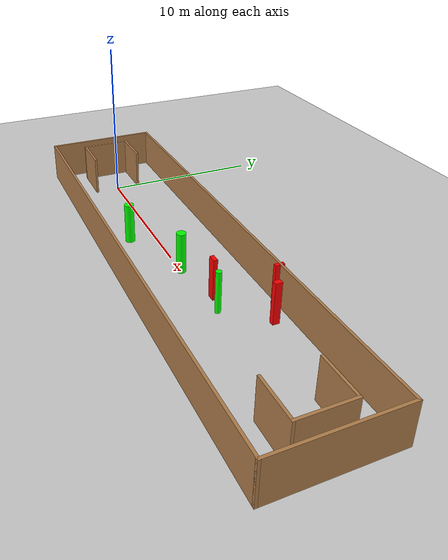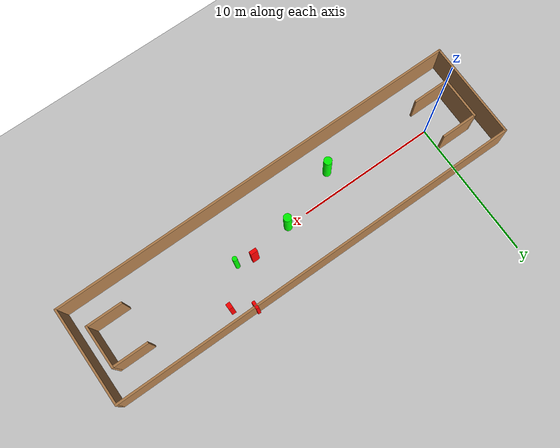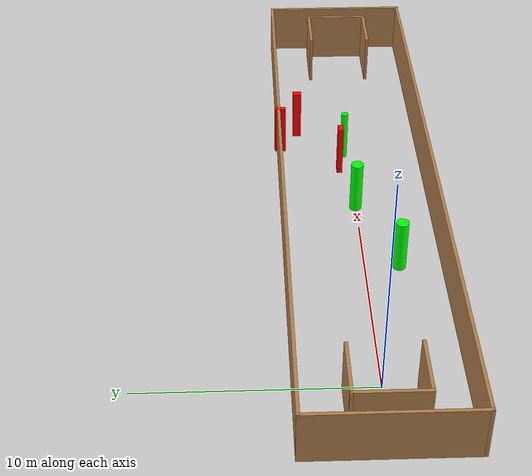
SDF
<sdf version="1.7">
 <world name="default">
  <light name="sun" type="directional">
   <pose>0 0 10 0 -0 0</pose>
   <diffuse>0.8 0.8 0.8 1</diffuse>
   <specular>0.2 0.2 0.2 1</specular>
   <attenuation>
    <range>1000</range>
    <constant>0.9</constant>
    <linear>0.01</linear>
    <quadratic>0.001</quadratic>
   </attenuation>
   <direction>-0.5 0.1 -0.9</direction>
   <spot><inner_angle>0</inner_angle><outer_angle>0</outer_angle><falloff>0</falloff></spot>
  </light>
  <model name="ground_plane">
   <static>1</static>
   <link name="link">
    <collision name="collision">
     <geometry><plane><normal>0 0 1</normal><size>100 100</size></plane></geometry>
     <surface>
      <contact><collide_bitmask>65535</collide_bitmask></contact>
      <friction><ode><mu>100</mu><mu2>50</mu2></ode></friction>
     </surface>
    </collision>
    <visual name="visual">
     <cast_shadows>0</cast_shadows>
     <geometry><plane><normal>0 0 1</normal><size>100 100</size></plane></geometry>
     <material>
      <script><uri>file://media/materials/scripts/gazebo.material</uri><name>Gazebo/Grey</name></script>
     </material>
    </visual>
   </link>
  </model>
  <gravity>0 0 -9.8</gravity>
  <magnetic_field>6e-06 2.3e-05 -4.2e-05</magnetic_field>
  <atmosphere type="adiabatic"/>
  <physics type="ode">
   <max_step_size>0.001</max_step_size>
   <real_time_factor>1</real_time_factor>
   <real_time_update_rate>1000</real_time_update_rate>
  </physics>
  <scene><ambient>0.4 0.4 0.4 1</ambient><background>0.7 0.7 0.7 1</background><shadows>1</shadows></scene>
  <spherical_coordinates>
   <surface_model>EARTH_WGS84</surface_model>
   <latitude_deg>0</latitude_deg>
   <longitude_deg>0</longitude_deg>
   <elevation>0</elevation>
   <heading_deg>0</heading_deg>
  </spherical_coordinates>
  <model name="my_base_walls">
   <link name="Wall_0">
    <collision name="Wall_0_Collision">
     <geometry><box><size>7.15 0.15 2.5</size></box></geometry>
     <pose>0 0 1.25 0 -0 0</pose>
    </collision>
    <visual name="Wall_0_Visual">
     <pose>0 0 1.25 0 -0 0</pose>
     <geometry><box><size>7.15 0.15 2.5</size></box></geometry>
     <material>
      <script><uri>file://media/materials/scripts/gazebo.material</uri><name>Gazebo/Wood</name></script>
      <ambient>1 1 1 1</ambient>
     </material>
     <meta><layer>0</layer></meta>
    </visual>
    <pose>-15 0 0 0 -0 1.5708</pose>
   </link>
   <link name="Wall_10">
    <collision name="Wall_10_Collision">
     <geometry><box><size>2.65 0.15 2.5</size></box></geometry>
     <pose>0 0 1.25 0 -0 0</pose>
    </collision>
    <visual name="Wall_10_Visual">
     <pose>0 0 1.25 0 -0 0</pose>
     <geometry><box><size>2.65 0.15 2.5</size></box></geometry>
     <material>
      <script><uri>file://media/materials/scripts/gazebo.material</uri><name>Gazebo/Wood</name></script>
      <ambient>1 1 1 1</ambient>
     </material>
     <meta><layer>0</layer></meta>
    </visual>
    <pose>-12.75 -1.5 0 0 -0 0</pose>
   </link>
   <link name="Wall_12">
    <collision name="Wall_12_Collision">
     <geometry><box><size>2.65 0.15 2.5</size></box></geometry>
     <pose>0 0 1.25 0 -0 0</pose>
    </collision>
    <visual name="Wall_12_Visual">
     <pose>0 0 1.25 0 -0 0</pose>
     <geometry><box><size>2.65 0.15 2.5</size></box></geometry>
     <material>
      <script><uri>file://media/materials/scripts/gazebo.material</uri><name>Gazebo/Wood</name></script>
      <ambient>1 1 1 1</ambient>
     </material>
     <meta><layer>0</layer></meta>
    </visual>
    <pose>-12.75 1.5 0 0 -0 0</pose>
   </link>
   <link name="Wall_14">
    <collision name="Wall_14_Collision">
     <geometry><box><size>3.15 0.15 2.5</size></box></geometry>
     <pose>0 0 1.25 0 -0 0</pose>
    </collision>
    <visual name="Wall_14_Visual">
     <pose>0 0 1.25 0 -0 0</pose>
     <geometry><box><size>3.15 0.15 2.5</size></box></geometry>
     <material>
      <script><uri>file://media/materials/scripts/gazebo.material</uri><name>Gazebo/Wood</name></script>
      <ambient>1 1 1 1</ambient>
     </material>
     <meta><layer>0</layer></meta>
    </visual>
    <pose>14 0 0 0 -0 -1.5708</pose>
   </link>
   <link name="Wall_15">
    <collision name="Wall_15_Collision">
     <geometry><box><size>2.65 0.15 2.5</size></box></geometry>
     <pose>0 0 1.25 0 -0 0</pose>
    </collision>
    <visual name="Wall_15_Visual">
     <pose>0 0 1.25 0 -0 0</pose>
     <geometry><box><size>2.65 0.15 2.5</size></box></geometry>
     <material>
      <script><uri>file://media/materials/scripts/gazebo.material</uri><name>Gazebo/Wood</name></script>
      <ambient>1 1 1 1</ambient>
     </material>
     <meta><layer>0</layer></meta>
    </visual>
    <pose>12.75 -1.5 0 0 -0 3.14159</pose>
   </link>
   <link name="Wall_17">
    <collision name="Wall_17_Collision">
     <geometry><box><size>2.65 0.15 2.5</size></box></geometry>
     <pose>0 0 1.25 0 -0 0</pose>
    </collision>
    <visual name="Wall_17_Visual">
     <pose>0 0 1.25 0 -0 0</pose>
     <geometry><box><size>2.65 0.15 2.5</size></box></geometry>
     <material>
      <script><uri>file://media/materials/scripts/gazebo.material</uri><name>Gazebo/Wood</name></script>
      <ambient>1 1 1 1</ambient>
     </material>
     <meta><layer>0</layer></meta>
    </visual>
    <pose>12.75 1.5 0 0 -0 3.14159</pose>
   </link>
   <link name="Wall_2">
    <collision name="Wall_2_Collision">
     <geometry><box><size>30.15 0.15 2.5</size></box></geometry>
     <pose>0 0 1.25 0 -0 0</pose>
    </collision>
    <visual name="Wall_2_Visual">
     <pose>0 0 1.25 0 -0 0</pose>
     <geometry><box><size>30.15 0.15 2.5</size></box></geometry>
     <material>
      <script><uri>file://media/materials/scripts/gazebo.material</uri><name>Gazebo/Wood</name></script>
      <ambient>1 1 1 1</ambient>
     </material>
     <meta><layer>0</layer></meta>
    </visual>
    <pose>-0 -3.5 0 0 -0 0</pose>
   </link>
   <link name="Wall_4">
    <collision name="Wall_4_Collision">
     <geometry><box><size>30.15 0.15 2.5</size></box></geometry>
     <pose>0 0 1.25 0 -0 0</pose>
    </collision>
    <visual name="Wall_4_Visual">
     <pose>0 0 1.25 0 -0 0</pose>
     <geometry><box><size>30.15 0.15 2.5</size></box></geometry>
     <material>
      <script><uri>file://media/materials/scripts/gazebo.material</uri><name>Gazebo/Wood</name></script>
      <ambient>1 1 1 1</ambient>
     </material>
     <meta><layer>0</layer></meta>
    </visual>
    <pose>-0 3.5 0 0 -0 0</pose>
   </link>
   <link name="Wall_6">
    <collision name="Wall_6_Collision">
     <geometry><box><size>7.15 0.15 2.5</size></box></geometry>
     <pose>0 0 1.25 0 -0 0</pose>
    </collision>
    <visual name="Wall_6_Visual">
     <pose>0 0 1.25 0 -0 0</pose>
     <geometry><box><size>7.15 0.15 2.5</size></box></geometry>
     <material>
      <script><uri>file://media/materials/scripts/gazebo.material</uri><name>Gazebo/Wood</name></script>
      <ambient>1 1 1 1</ambient>
     </material>
     <meta><layer>0</layer></meta>
    </visual>
    <pose>15 0 0 0 -0 -1.5708</pose>
   </link>
   <link name="Wall_9">
    <collision name="Wall_9_Collision">
     <geometry><box><size>3.15 0.15 2.5</size></box></geometry>
     <pose>0 0 1.25 0 -0 0</pose>
    </collision>
    <visual name="Wall_9_Visual">
     <pose>0 0 1.25 0 -0 0</pose>
     <geometry><box><size>3.15 0.15 2.5</size></box></geometry>
     <material>
      <script><uri>file://media/materials/scripts/gazebo.material</uri><name>Gazebo/Wood</name></script>
      <ambient>1 1 1 1</ambient>
     </material>
     <meta><layer>0</layer></meta>
    </visual>
    <pose>-14 0 0 0 -0 -1.5708</pose>
   </link>
   <static>1</static>
   <pose>11.5 0 0 0 -0 0</pose>
  </model>
  <model name="cylinder1">
   <static>1</static>
   <link name="link">
    <inertial>
     <mass>1</mass>
     <inertia><ixx>0.5</ixx><ixy>0</ixy><ixz>0</ixz><iyy>0.5</iyy><iyz>0</iyz><izz>1</izz></inertia>
    </inertial>
    <collision name="collision">
     <geometry><cylinder><radius>0.2845453761114074</radius><length>2.5</length></cylinder></geometry>
    </collision>
    <visual name="visual">
     <geometry><cylinder><radius>0.2845453761114074</radius><length>2.5</length></cylinder></geometry>
     <material>
      <ambient>0 1 0 1</ambient>
      <diffuse>0 1 0 1</diffuse>
      <specular>0.1 0.1 0.1 1</specular>
      <emissive>0 0 0 0</emissive>
     </material>
    </visual>
   </link>
   <pose>11.500040994280681 0.032694710108958525 1.25 0 0 0</pose>
  </model>
  <model name="cylinder2">
   <static>1</static>
   <link name="link">
    <inertial>
     <mass>1</mass>
     <inertia><ixx>0.5</ixx><ixy>0</ixy><ixz>0</ixz><iyy>0.5</iyy><iyz>0</iyz><izz>1</izz></inertia>
    </inertial>
    <collision name="collision">
     <geometry><cylinder><radius>0.2896067926861683</radius><length>2.5</length></cylinder></geometry>
    </collision>
    <visual name="visual">
     <geometry><cylinder><radius>0.2896067926861683</radius><length>2.5</length></cylinder></geometry>
     <material>
      <ambient>0 1 0 1</ambient>
      <diffuse>0 1 0 1</diffuse>
      <specular>0.1 0.1 0.1 1</specular>
      <emissive>0 0 0 0</emissive>
     </material>
    </visual>
   </link>
   <pose>7.18333648410562 -1.53818536156701 1.25 0 0 0</pose>
  </model>
  <model name="cylinder3">
   <static>1</static>
   <link name="link">
    <inertial>
     <mass>1</mass>
     <inertia><ixx>0.5</ixx><ixy>0</ixy><ixz>0</ixz><iyy>0.5</iyy><iyz>0</iyz><izz>1</izz></inertia>
    </inertial>
    <collision name="collision">
     <geometry><cylinder><radius>0.16704961136294827</radius><length>2.5</length></cylinder></geometry>
    </collision>
    <visual name="visual">
     <geometry><cylinder><radius>0.16704961136294827</radius><length>2.5</length></cylinder></geometry>
     <material>
      <ambient>0 1 0 1</ambient>
      <diffuse>0 1 0 1</diffuse>
      <specular>0.1 0.1 0.1 1</specular>
      <emissive>0 0 0 0</emissive>
     </material>
    </visual>
   </link>
   <pose>15.725848429523788 0.27755921179613985 1.25 0 0 0</pose>
  </model>
  <model name="box1">
   <static>1</static>
   <link name="link">
    <inertial>
     <mass>1</mass>
     <inertia><ixx>0.083</ixx><ixy>0</ixy><ixz>0</ixz><iyy>0.083</iyy><iyz>0</iyz><izz>0.083</izz></inertia>
    </inertial>
    <collision name="collision">
     <geometry><box><size>0.5057493724035871 0.24874041204176334 2.5</size></box></geometry>
    </collision>
    <visual name="visual">
     <geometry><box><size>0.5057493724035871 0.24874041204176334 2.5</size></box></geometry>
     <material>
      <ambient>1 0 0 1</ambient>
      <diffuse>1 0 0 1</diffuse>
      <specular>0.1 0.1 0.1 1</specular>
      <emissive>0 0 0 0</emissive>
     </material>
    </visual>
    <sensor name="my_contact" type="contact">
     <contact><collision>box_collision</collision><topic>__default_topic__</topic></contact>
    </sensor>
   </link>
   <pose>14.511005706650275 0.5724812324237458 1.25 0 0 0</pose>
  </model>
  <model name="box2">
   <static>1</static>
   <link name="link">
    <inertial>
     <mass>1</mass>
     <inertia><ixx>0.083</ixx><ixy>0</ixy><ixz>0</ixz><iyy>0.083</iyy><iyz>0</iyz><izz>0.083</izz></inertia>
    </inertial>
    <collision name="collision">
     <geometry><box><size>0.30595941887847733 0.4054618724916485 2.5</size></box></geometry>
    </collision>
    <visual name="visual">
     <geometry><box><size>0.30595941887847733 0.4054618724916485 2.5</size></box></geometry>
     <material>
      <ambient>1 0 0 1</ambient>
      <diffuse>1 0 0 1</diffuse>
      <specular>0.1 0.1 0.1 1</specular>
      <emissive>0 0 0 0</emissive>
     </material>
    </visual>
    <sensor name="my_contact" type="contact">
     <contact><collision>box_collision</collision><topic>__default_topic__</topic></contact>
    </sensor>
   </link>
   <pose>17.65823708798235 2.5295320857613532 1.25 0 0 0</pose>
  </model>
  <model name="box3">
   <static>1</static>
   <link name="link">
    <inertial>
     <mass>1</mass>
     <inertia><ixx>0.083</ixx><ixy>0</ixy><ixz>0</ixz><iyy>0.083</iyy><iyz>0</iyz><izz>0.083</izz></inertia>
    </inertial>
    <collision name="collision">
     <geometry><box><size>0.2135417585346504 0.538514554715756 2.5</size></box></geometry>
    </collision>
    <visual name="visual">
     <geometry><box><size>0.2135417585346504 0.538514554715756 2.5</size></box></geometry>
     <material>
      <ambient>1 0 0 1</ambient>
      <diffuse>1 0 0 1</diffuse>
      <specular>0.1 0.1 0.1 1</specular>
      <emissive>0 0 0 0</emissive>
     </material>
    </visual>
    <sensor name="my_contact" type="contact">
     <contact><collision>box_collision</collision><topic>__default_topic__</topic></contact>
    </sensor>
   </link>
   <pose>16.319800166389523 3.4154433616932964 1.25 0 0 0</pose>
  </model>
 </world>
</sdf>
